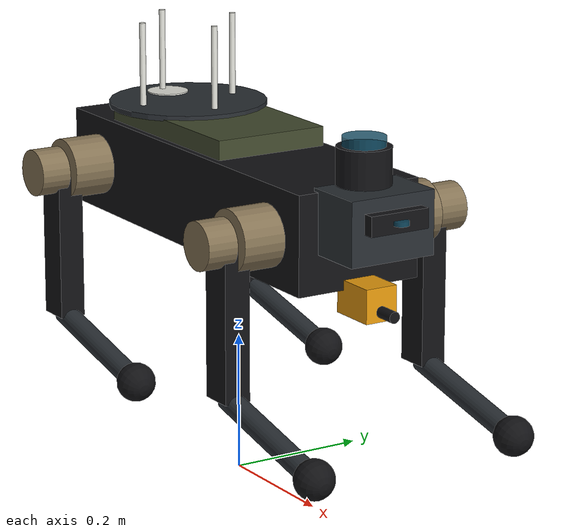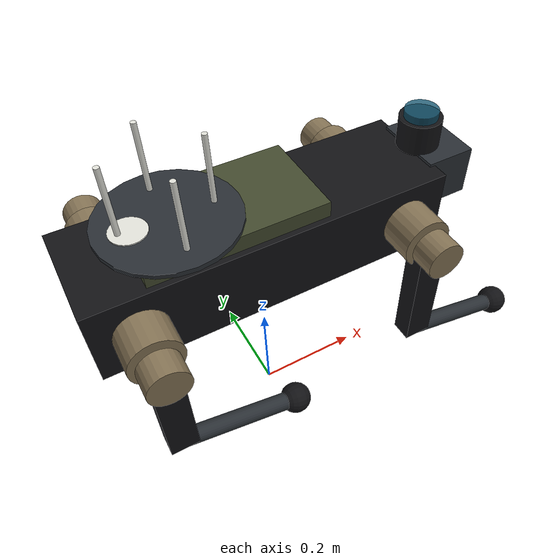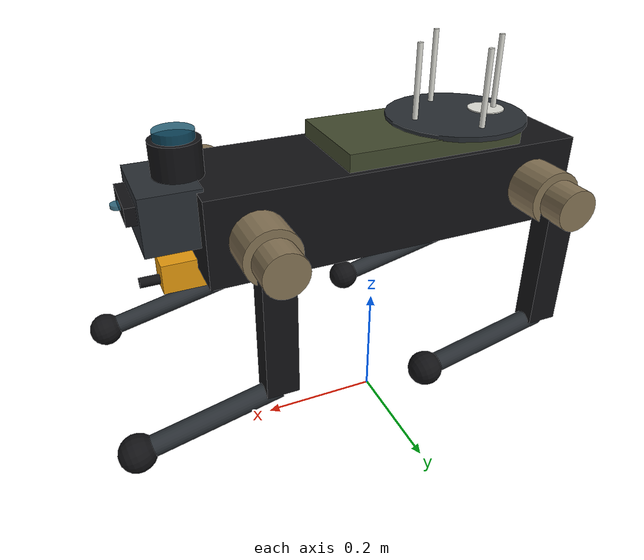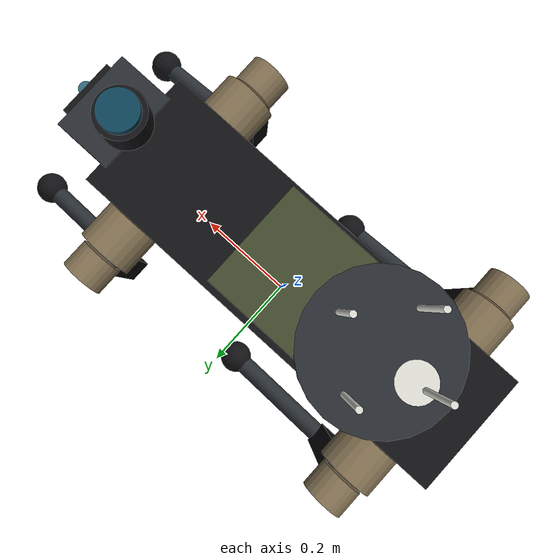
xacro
<?xml version="1.0"?>
<robot name="quadruped" xmlns:xacro="http://www.ros.org/wiki/xacro">

  <xacro:arg name="namespace" default="dog_1"/>
  <xacro:arg name="tf_prefix" default="dog_1"/>

  <xacro:property name="ns" value="$(arg namespace)"/>
  <xacro:property name="tfp" value="$(arg tf_prefix)"/>

  <xacro:include filename="$(find swarm_description)/urdf/common/materials.xacro"/>
  <xacro:include filename="$(find swarm_description)/urdf/common/inertia.xacro"/>
  <xacro:include filename="$(find swarm_description)/urdf/common/sensors.xacro"/>

  <!-- ============================ dimensions ============================= -->
  <xacro:property name="trunk_x" value="0.62"/>
  <xacro:property name="trunk_y" value="0.19"/>
  <xacro:property name="trunk_z" value="0.14"/>
  <xacro:property name="trunk_mass" value="11.5"/>

  <xacro:property name="hip_offset_x" value="0.235"/>
  <xacro:property name="hip_offset_y" value="0.0975"/>

  <xacro:property name="thigh_length" value="0.22"/>
  <xacro:property name="thigh_mass" value="1.05"/>
  <xacro:property name="shank_length" value="0.22"/>
  <xacro:property name="shank_mass" value="0.26"/>
  <xacro:property name="foot_radius" value="0.028"/>

  <xacro:property name="stance_height" value="0.419"/>

  <link name="base_footprint"/>
  <joint name="base_joint" type="fixed">
    <parent link="base_footprint"/>
    <child link="base_link"/>
    <origin xyz="0 0 ${stance_height}" rpy="0 0 0"/>
  </joint>

  <!-- ============================== trunk ================================ -->
  <link name="base_link">
    <visual>
      <geometry><box size="${trunk_x} ${trunk_y} ${trunk_z}"/></geometry>
      <material name="matte_black"/>
    </visual>
    <!-- Payload deck on top: sampler, radio, DF array all bolt here. -->
    <visual>
      <origin xyz="-0.06 0 ${trunk_z/2 + 0.014}"/>
      <geometry><box size="0.30 ${trunk_y - 0.02} 0.028"/></geometry>
      <material name="olive_drab"/>
    </visual>
    <!-- Sensor head, forward. -->
    <visual>
      <origin xyz="${trunk_x/2 + 0.035} 0 0.030" rpy="0 0 0"/>
      <geometry><box size="0.090 0.130 0.090"/></geometry>
      <material name="gunmetal"/>
    </visual>
    <collision>
      <geometry><box size="${trunk_x} ${trunk_y} ${trunk_z}"/></geometry>
    </collision>
    <xacro:box_inertial mass="${trunk_mass}" x="${trunk_x}" y="${trunk_y}" z="${trunk_z}">
      <origin xyz="0 0 0"/>
    </xacro:box_inertial>
  </link>
  <!-- =============================== leg ================================= -->
  <!-- `side` is +1 for a left leg and -1 for a right one; it mirrors the hip
       roll limits and the abduction sense so both sides splay outward. -->
  <xacro:macro name="leg" params="name x y side">

    <!-- ~~~ hip roll (abduction/adduction, about the body x axis) ~~~ -->
    <joint name="${name}_hip_roll" type="revolute">
      <parent link="base_link"/>
      <child link="${name}_hip_link"/>
      <origin xyz="${x} ${y} 0" rpy="0 0 0"/>
      <axis xyz="1 0 0"/>
      <limit lower="${-0.80}" upper="${0.80}" effort="34.0" velocity="21.0"/>
      <dynamics damping="0.03" friction="0.08"/>
    </joint>
    <link name="${name}_hip_link">
      <visual>
        <origin xyz="0 ${side * 0.030} 0" rpy="${pi/2} 0 0"/>
        <geometry><cylinder radius="0.044" length="0.062"/></geometry>
        <material name="coyote_tan"/>
      </visual>
      <collision>
        <origin xyz="0 ${side * 0.030} 0" rpy="${pi/2} 0 0"/>
        <geometry><cylinder radius="0.044" length="0.062"/></geometry>
      </collision>
      <xacro:cylinder_inertial mass="0.68" radius="0.044" length="0.062">
        <origin xyz="0 ${side * 0.030} 0" rpy="${pi/2} 0 0"/>
      </xacro:cylinder_inertial>
    </link>
    <!-- ~~~ hip pitch (swings the thigh fore/aft, about the body y axis) ~~~ -->
    <joint name="${name}_hip_pitch" type="revolute">
      <parent link="${name}_hip_link"/>
      <child link="${name}_thigh_link"/>
      <origin xyz="0 ${side * 0.062} 0" rpy="0 0 0"/>
      <axis xyz="0 1 0"/>
      <limit lower="${-1.05}" upper="${2.10}" effort="34.0" velocity="21.0"/>
      <dynamics damping="0.03" friction="0.08"/>
    </joint>
    <link name="${name}_thigh_link">
      <visual>
        <origin xyz="0 0 ${-thigh_length/2}"/>
        <geometry><box size="0.050 0.038 ${thigh_length}"/></geometry>
        <material name="matte_black"/>
      </visual>
      <!-- Knee actuator housing. -->
      <visual>
        <origin xyz="0 ${side * 0.026} 0" rpy="${pi/2} 0 0"/>
        <geometry><cylinder radius="0.034" length="0.044"/></geometry>
        <material name="coyote_tan"/>
      </visual>
      <collision>
        <origin xyz="0 0 ${-thigh_length/2}"/>
        <geometry><box size="0.050 0.038 ${thigh_length}"/></geometry>
      </collision>
      <xacro:box_inertial mass="${thigh_mass}" x="0.050" y="0.038" z="${thigh_length}">
        <!-- Mass is biased up toward the actuator, as on a real leg. -->
        <origin xyz="0 0 ${-thigh_length * 0.38}"/>
      </xacro:box_inertial>
    </link>
    <!-- ~~~ knee (shank flexion; negative only, knees bend one way) ~~~ -->
    <joint name="${name}_knee" type="revolute">
      <parent link="${name}_thigh_link"/>
      <child link="${name}_shank_link"/>
      <origin xyz="0 0 ${-thigh_length}" rpy="0 0 0"/>
      <axis xyz="0 1 0"/>
      <limit lower="${-2.60}" upper="${-0.10}" effort="34.0" velocity="21.0"/>
      <dynamics damping="0.03" friction="0.08"/>
    </joint>
    <link name="${name}_shank_link">
      <visual>
        <origin xyz="0 0 ${-shank_length/2}"/>
        <geometry><cylinder radius="0.016" length="${shank_length}"/></geometry>
        <material name="gunmetal"/>
      </visual>
      <collision>
        <origin xyz="0 0 ${-shank_length/2}"/>
        <geometry><cylinder radius="0.016" length="${shank_length}"/></geometry>
      </collision>
      <xacro:cylinder_inertial mass="${shank_mass}" radius="0.016" length="${shank_length}">
        <origin xyz="0 0 ${-shank_length * 0.42}"/>
      </xacro:cylinder_inertial>
    </link>
    <!-- ~~~ foot (compliant rubber pad; the only link that touches ground) ~~~ -->
    <joint name="${name}_foot_joint" type="fixed">
      <parent link="${name}_shank_link"/>
      <child link="${name}_foot_link"/>
      <origin xyz="0 0 ${-shank_length}" rpy="0 0 0"/>
    </joint>
    <link name="${name}_foot_link">
      <visual>
        <geometry><sphere radius="${foot_radius}"/></geometry>
        <material name="matte_black"/>
      </visual>
      <collision>
        <geometry><sphere radius="${foot_radius}"/></geometry>
      </collision>
      <xacro:sphere_inertial mass="0.06" radius="${foot_radius}">
        <origin xyz="0 0 0"/>
      </xacro:sphere_inertial>
    </link>
    <!-- Foot contact sensor: the gait and the stair-climb check both use it. -->
  </xacro:macro>

  <!-- Leg naming is load-bearing: kinematic_platform looks up
       {fl,fr,rl,rr}_{hip_roll,hip_pitch,knee} by exactly these names. -->
  <xacro:leg name="fl" x="${hip_offset_x}"  y="${hip_offset_y}"  side="1"/>
  <xacro:leg name="fr" x="${hip_offset_x}"  y="${-hip_offset_y}" side="-1"/>
  <xacro:leg name="rl" x="${-hip_offset_x}" y="${hip_offset_y}"  side="1"/>
  <xacro:leg name="rr" x="${-hip_offset_x}" y="${-hip_offset_y}" side="-1"/>

  <!-- ============================== sensors ============================== -->
  <!-- Head camera: the close-in confirm sensor, under a doorway or over rubble. -->
  <xacro:camera_rgb prefix="head_camera" parent="base_link"
                    xyz="${trunk_x/2 + 0.082} 0 0.042" hfov="1.3963"
                    width="640" height="480" rate="20.0"/>

  <!-- Low, wide 2D scan for alley navigation and doorway detection. -->
  <xacro:lidar_2d prefix="lidar" parent="base_link"
                  xyz="${trunk_x/2 + 0.010} 0 ${trunk_z/2 + 0.030}"
                  samples="540" range_max="18.0" rate="15.0"
                  min_angle="${-2.35}" max_angle="${2.35}"/>

  <xacro:imu_sensor prefix="imu" parent="base_link" xyz="0 0 0.0" rate="200.0"/>

  <!-- GNSS is near-useless in the alleys this platform works; carried for the
       ingress leg only, and weighted down hard by the localiser. -->
  <xacro:gnss_sensor prefix="gnss" parent="base_link"
                     xyz="-0.20 0 ${trunk_z/2 + 0.030}" noise="1.8"/>

  <!-- The mission-unique payload: nothing else on the team can sample. -->
  <xacro:cbrn_sampler prefix="cbrn" parent="base_link"
                      xyz="${trunk_x/2 + 0.020} 0 ${-trunk_z/2 - 0.010}"
                      standoff="2.5" detect_threshold="0.15"/>

  <!-- Compact DF array on the payload deck: poor baseline, excellent access. -->
  <xacro:rf_df_array prefix="rf_df" parent="base_link"
                     xyz="-0.14 0 ${trunk_z/2 + 0.030}"
                     elements="4" baseline="0.075" mast="0.120"
                     band_mhz="433.0" sensitivity_dbm="-108.0"/>

  <!-- ============================== plugins ============================== -->
</robot>

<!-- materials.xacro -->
<robot xmlns:xacro="http://www.ros.org/wiki/xacro">

  <material name="olive_drab"><color rgba="0.26 0.29 0.18 1.0"/></material>
  <material name="coyote_tan"><color rgba="0.52 0.45 0.33 1.0"/></material>
  <material name="gunmetal"><color rgba="0.16 0.18 0.20 1.0"/></material>
  <material name="matte_black"><color rgba="0.07 0.07 0.08 1.0"/></material>
  <material name="sensor_glass"><color rgba="0.10 0.35 0.45 0.85"/></material>
  <material name="hazard_amber"><color rgba="0.90 0.60 0.05 1.0"/></material>
  <material name="signal_red"><color rgba="0.75 0.10 0.10 1.0"/></material>
  <material name="antenna_white"><color rgba="0.88 0.88 0.85 1.0"/></material>
</robot>

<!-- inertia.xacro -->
<robot xmlns:xacro="http://www.ros.org/wiki/xacro">

  <xacro:macro name="box_inertial" params="mass x y z *origin">
    <inertial>
      <xacro:insert_block name="origin"/>
      <mass value="${mass}"/>
      <inertia
        ixx="${mass * (y*y + z*z) / 12.0}" ixy="0.0" ixz="0.0"
        iyy="${mass * (x*x + z*z) / 12.0}" iyz="0.0"
        izz="${mass * (x*x + y*y) / 12.0}"/>
    </inertial>
  </xacro:macro>

  <!-- Cylinder about its own z axis. -->
  <xacro:macro name="cylinder_inertial" params="mass radius length *origin">
    <inertial>
      <xacro:insert_block name="origin"/>
      <mass value="${mass}"/>
      <inertia
        ixx="${mass * (3.0*radius*radius + length*length) / 12.0}" ixy="0.0" ixz="0.0"
        iyy="${mass * (3.0*radius*radius + length*length) / 12.0}" iyz="0.0"
        izz="${mass * radius * radius / 2.0}"/>
    </inertial>
  </xacro:macro>

  <!-- Wheel: cylinder rolling about y, as mounted on these platforms. -->
  <xacro:macro name="wheel_inertial" params="mass radius width *origin">
    <inertial>
      <xacro:insert_block name="origin"/>
      <mass value="${mass}"/>
      <inertia
        ixx="${mass * (3.0*radius*radius + width*width) / 12.0}" ixy="0.0" ixz="0.0"
        iyy="${mass * radius * radius / 2.0}" iyz="0.0"
        izz="${mass * (3.0*radius*radius + width*width) / 12.0}"/>
    </inertial>
  </xacro:macro>

  <xacro:macro name="sphere_inertial" params="mass radius *origin">
    <inertial>
      <xacro:insert_block name="origin"/>
      <mass value="${mass}"/>
      <inertia
        ixx="${2.0 * mass * radius * radius / 5.0}" ixy="0.0" ixz="0.0"
        iyy="${2.0 * mass * radius * radius / 5.0}" iyz="0.0"
        izz="${2.0 * mass * radius * radius / 5.0}"/>
    </inertial>
  </xacro:macro>
</robot>

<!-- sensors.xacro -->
<robot xmlns:xacro="http://www.ros.org/wiki/xacro">
  <xacro:include filename="$(find swarm_description)/urdf/common/inertia.xacro"/>

  <!-- ===================== 2D scanning LiDAR ============================= -->
  <xacro:macro name="lidar_2d" params="prefix parent xyz rpy:='0 0 0'
                                       samples:=720 range_max:=30.0 rate:=15.0
                                       min_angle:=${-pi} max_angle:=${pi}">
    <joint name="${prefix}_joint" type="fixed">
      <parent link="${parent}"/>
      <child link="${prefix}_link"/>
      <origin xyz="${xyz}" rpy="${rpy}"/>
    </joint>
    <link name="${prefix}_link">
      <visual>
        <geometry><cylinder radius="0.038" length="0.055"/></geometry>
        <material name="matte_black"/>
      </visual>
      <visual>
        <origin xyz="0 0 0.034"/>
        <geometry><cylinder radius="0.030" length="0.014"/></geometry>
        <material name="sensor_glass"/>
      </visual>
      <collision><geometry><cylinder radius="0.038" length="0.055"/></geometry></collision>
      <xacro:cylinder_inertial mass="0.18" radius="0.038" length="0.055">
        <origin xyz="0 0 0"/>
      </xacro:cylinder_inertial>
    </link>
  </xacro:macro>

  <!-- =============== 3D LiDAR (tilted multi-layer scanner) =============== -->
  <xacro:macro name="lidar_3d" params="prefix parent xyz rpy:='0 0 0'
                                       h_samples:=360 v_samples:=16 range_max:=40.0 rate:=10.0">
    <joint name="${prefix}_joint" type="fixed">
      <parent link="${parent}"/>
      <child link="${prefix}_link"/>
      <origin xyz="${xyz}" rpy="${rpy}"/>
    </joint>
    <link name="${prefix}_link">
      <visual>
        <geometry><cylinder radius="0.045" length="0.072"/></geometry>
        <material name="gunmetal"/>
      </visual>
      <collision><geometry><cylinder radius="0.045" length="0.072"/></geometry></collision>
      <xacro:cylinder_inertial mass="0.42" radius="0.045" length="0.072">
        <origin xyz="0 0 0"/>
      </xacro:cylinder_inertial>
    </link>
  </xacro:macro>

  <!-- ========================= RGB camera =============================== -->
  <xacro:macro name="camera_rgb" params="prefix parent xyz rpy:='0 0 0'
                                         width:=640 height:=480 hfov:=1.3962
                                         rate:=20.0 topic:=image_raw">
    <joint name="${prefix}_joint" type="fixed">
      <parent link="${parent}"/>
      <child link="${prefix}_link"/>
      <origin xyz="${xyz}" rpy="${rpy}"/>
    </joint>
    <link name="${prefix}_link">
      <visual>
        <geometry><box size="0.028 0.090 0.028"/></geometry>
        <material name="matte_black"/>
      </visual>
      <visual>
        <origin xyz="0.016 0 0"/>
        <geometry><cylinder radius="0.011" length="0.006"/></geometry>
        <origin rpy="0 ${pi/2} 0" xyz="0.016 0 0"/>
        <material name="sensor_glass"/>
      </visual>
      <collision><geometry><box size="0.028 0.090 0.028"/></geometry></collision>
      <xacro:box_inertial mass="0.09" x="0.028" y="0.090" z="0.028">
        <origin xyz="0 0 0"/>
      </xacro:box_inertial>
    </link>
    <!-- REP-103 optical frame: z forward, x right, y down. -->
    <joint name="${prefix}_optical_joint" type="fixed">
      <parent link="${prefix}_link"/>
      <child link="${prefix}_optical_frame"/>
      <origin xyz="0 0 0" rpy="${-pi/2} 0 ${-pi/2}"/>
    </joint>
    <link name="${prefix}_optical_frame"/>
  </xacro:macro>

  <!-- ===================== Uncooled LWIR thermal ========================= -->
  <xacro:macro name="camera_thermal" params="prefix parent xyz rpy:='0 0 0'
                                             width:=320 height:=256 rate:=9.0">
    <joint name="${prefix}_joint" type="fixed">
      <parent link="${parent}"/>
      <child link="${prefix}_link"/>
      <origin xyz="${xyz}" rpy="${rpy}"/>
    </joint>
    <link name="${prefix}_link">
      <visual>
        <geometry><cylinder radius="0.021" length="0.046"/></geometry>
        <origin rpy="0 ${pi/2} 0"/>
        <material name="gunmetal"/>
      </visual>
      <collision>
        <geometry><cylinder radius="0.021" length="0.046"/></geometry>
        <origin rpy="0 ${pi/2} 0"/>
      </collision>
      <xacro:cylinder_inertial mass="0.07" radius="0.021" length="0.046">
        <origin rpy="0 ${pi/2} 0"/>
      </xacro:cylinder_inertial>
    </link>
    <joint name="${prefix}_optical_joint" type="fixed">
      <parent link="${prefix}_link"/>
      <child link="${prefix}_optical_frame"/>
      <origin xyz="0 0 0" rpy="${-pi/2} 0 ${-pi/2}"/>
    </joint>
    <link name="${prefix}_optical_frame"/>
  </xacro:macro>

  <!-- ============================= IMU ================================== -->
  <xacro:macro name="imu_sensor" params="prefix parent xyz rpy:='0 0 0' rate:=100.0">
    <joint name="${prefix}_joint" type="fixed">
      <parent link="${parent}"/>
      <child link="${prefix}_link"/>
      <origin xyz="${xyz}" rpy="${rpy}"/>
    </joint>
    <link name="${prefix}_link">
      <visual>
        <geometry><box size="0.022 0.022 0.007"/></geometry>
        <material name="hazard_amber"/>
      </visual>
      <xacro:box_inertial mass="0.012" x="0.022" y="0.022" z="0.007">
        <origin xyz="0 0 0"/>
      </xacro:box_inertial>
    </link>
  </xacro:macro>

  <!-- ===================== GNSS (degraded / jammable) ==================== -->
  <xacro:macro name="gnss_sensor" params="prefix parent xyz rate:=5.0 noise:=0.9">
    <joint name="${prefix}_joint" type="fixed">
      <parent link="${parent}"/>
      <child link="${prefix}_link"/>
      <origin xyz="${xyz}" rpy="0 0 0"/>
    </joint>
    <link name="${prefix}_link">
      <visual>
        <geometry><cylinder radius="0.030" length="0.012"/></geometry>
        <material name="antenna_white"/>
      </visual>
      <xacro:cylinder_inertial mass="0.045" radius="0.030" length="0.012">
        <origin xyz="0 0 0"/>
      </xacro:cylinder_inertial>
    </link>
  </xacro:macro>

  <!-- ================ RF direction-finding antenna array ================= -->
  <xacro:macro name="rf_df_array" params="prefix parent xyz elements:=4
                                          baseline:=0.18 mast:=0.22
                                          band_mhz:=433.0 sensitivity_dbm:=-105.0">
    <joint name="${prefix}_joint" type="fixed">
      <parent link="${parent}"/>
      <child link="${prefix}_link"/>
      <origin xyz="${xyz}" rpy="0 0 0"/>
    </joint>
    <link name="${prefix}_link">
      <!-- Ground plane the monopoles stand on. -->
      <visual>
        <geometry><cylinder radius="${baseline + 0.04}" length="0.008"/></geometry>
        <material name="gunmetal"/>
      </visual>
      <collision>
        <geometry><cylinder radius="${baseline + 0.04}" length="0.008"/></geometry>
      </collision>
      <xacro:cylinder_inertial mass="0.20" radius="${baseline + 0.04}" length="0.008">
        <origin xyz="0 0 0"/>
      </xacro:cylinder_inertial>
    </link>

    <xacro:macro name="_df_element" params="i">
      <joint name="${prefix}_el${i}_joint" type="fixed">
        <parent link="${prefix}_link"/>
        <child link="${prefix}_el${i}_link"/>
        <origin xyz="${baseline * cos(2.0 * pi * i / elements)}
                     ${baseline * sin(2.0 * pi * i / elements)}
                     ${mast / 2.0 + 0.004}" rpy="0 0 0"/>
      </joint>
      <link name="${prefix}_el${i}_link">
        <visual>
          <geometry><cylinder radius="0.0045" length="${mast}"/></geometry>
          <material name="antenna_white"/>
        </visual>
        <xacro:cylinder_inertial mass="0.015" radius="0.0045" length="${mast}">
          <origin xyz="0 0 0"/>
        </xacro:cylinder_inertial>
      </link>
    </xacro:macro>

    <xacro:_df_element i="0"/>
    <xacro:_df_element i="1"/>
    <xacro:if value="${elements &gt;= 3}"><xacro:_df_element i="2"/></xacro:if>
    <xacro:if value="${elements &gt;= 4}"><xacro:_df_element i="3"/></xacro:if>
    <xacro:if value="${elements &gt;= 5}"><xacro:_df_element i="4"/></xacro:if>
    <xacro:if value="${elements &gt;= 6}"><xacro:_df_element i="5"/></xacro:if>

    <!-- These numbers are read by swarm_gnn/threat_field_node, which supplies
         the propagation physics; the baseline below sets the bearing variance. -->
  </xacro:macro>

  <!-- ====================== CBRN point sampler =========================== -->
  <!-- Pumped intake with a short standoff: a sample is only valid within
       `standoff` metres, which is exactly why the mission plan hands this task
       to the quadruped and not to the drone. -->
  <xacro:macro name="cbrn_sampler" params="prefix parent xyz rpy:='0 0 0'
                                           standoff:=2.5 detect_threshold:=0.15">
    <joint name="${prefix}_joint" type="fixed">
      <parent link="${parent}"/>
      <child link="${prefix}_link"/>
      <origin xyz="${xyz}" rpy="${rpy}"/>
    </joint>
    <link name="${prefix}_link">
      <visual>
        <geometry><box size="0.070 0.048 0.048"/></geometry>
        <material name="hazard_amber"/>
      </visual>
      <!-- Intake snorkel. -->
      <visual>
        <origin xyz="0.046 0 -0.010" rpy="0 ${pi/2} 0"/>
        <geometry><cylinder radius="0.008" length="0.040"/></geometry>
        <material name="matte_black"/>
      </visual>
      <collision><geometry><box size="0.070 0.048 0.048"/></geometry></collision>
      <xacro:box_inertial mass="0.26" x="0.070" y="0.048" z="0.048">
        <origin xyz="0 0 0"/>
      </xacro:box_inertial>
    </link>
  </xacro:macro>

  <!-- ================= Jammer-marker dispenser (UGV) ===================== -->
  <!-- Carries `capacity` expendable RF markers. Emplacing one is the mission's
       terminal action on a confirmed emitter; the count is a hard resource
       constraint the allocator has to respect. -->
  <xacro:macro name="marker_dispenser" params="prefix parent xyz capacity:=4">
    <joint name="${prefix}_joint" type="fixed">
      <parent link="${parent}"/>
      <child link="${prefix}_link"/>
      <origin xyz="${xyz}" rpy="0 0 0"/>
    </joint>
    <link name="${prefix}_link">
      <visual>
        <geometry><box size="0.130 0.110 0.090"/></geometry>
        <material name="olive_drab"/>
      </visual>
      <visual>
        <origin xyz="0 0 -0.050"/>
        <geometry><cylinder radius="0.030" length="0.014"/></geometry>
        <material name="signal_red"/>
      </visual>
      <collision><geometry><box size="0.130 0.110 0.090"/></geometry></collision>
      <xacro:box_inertial mass="${0.6 + 0.25 * capacity}" x="0.130" y="0.110" z="0.090">
        <origin xyz="0 0 0"/>
      </xacro:box_inertial>
    </link>
  </xacro:macro>
</robot>
